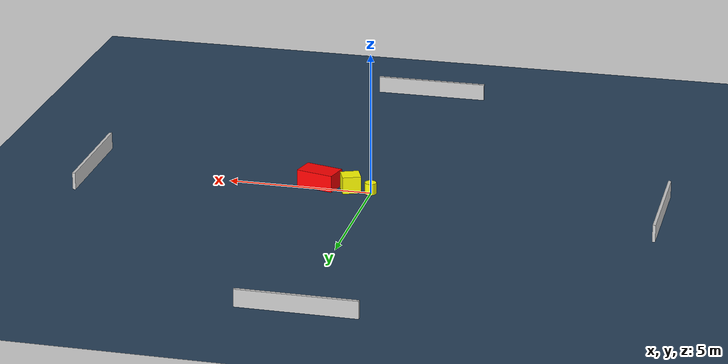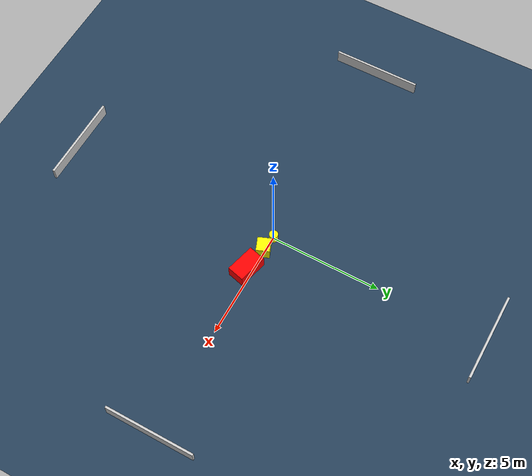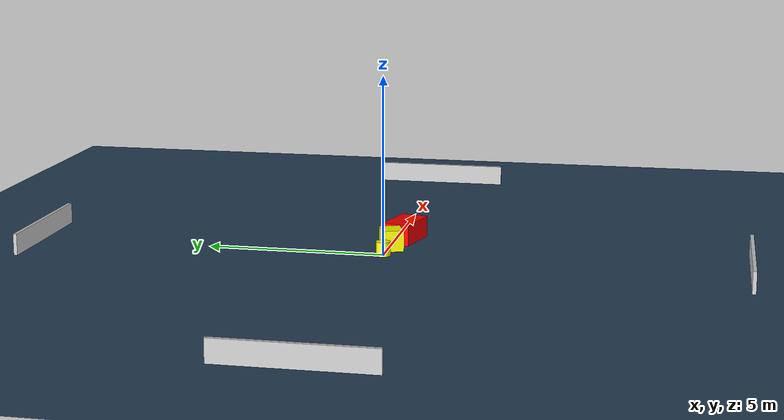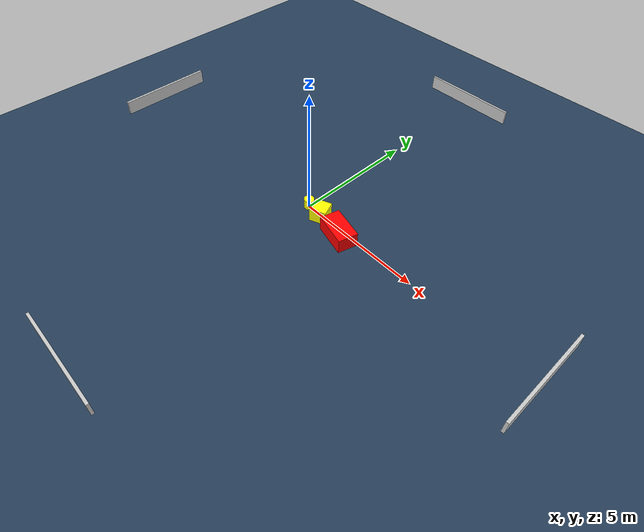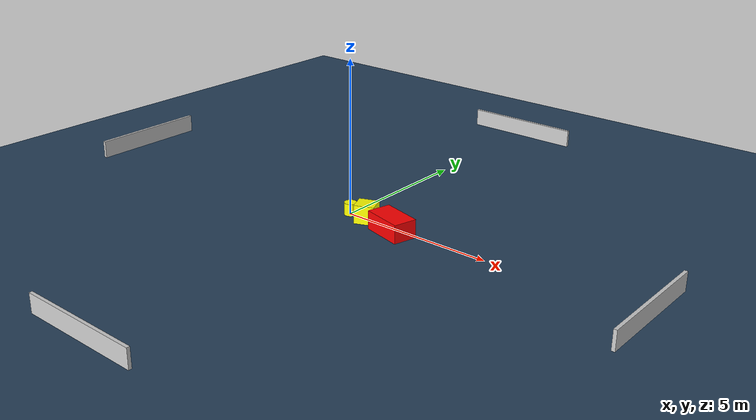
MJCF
<?xml version="1.0" ?>
<mujoco model="generated_environment">
  <option timestep="0.01" integrator="RK4" cone="elliptic"/>
  <default>
    <geom density="1"/>
  </default>
  <asset>
    <texture builtin="gradient" height="3072" name="skybox" rgb1="0.3 0.5 0.7" rgb2="0 0 0" type="skybox" width="512"/>
    <texture builtin="checker" height="300" name="groundplane" rgb1="0.2 0.3 0.4" rgb2="0.1 0.2 0.3" type="2d" width="300"/>
    <material name="groundplane" reflectance="0.2" texrepeat="5 5" texture="groundplane"/>
  </asset>
  <worldbody>
    <light dir="0 0 -1" directional="true" pos="0 0 1.5"/>
    <geom condim="3" friction="0.5 0.005 0.001" material="groundplane" name="floor" pos="0 0 0" size="0 0 0.05" type="plane"/>
    <body name="walls">
      <geom name="wall_1" condim="4" pos="-10.0 0.0 0.3" rgba="0.800000011920929 0.800000011920929 0.800000011920929 1.0" size="0.05 2.0 0.3" type="box"/>
      <geom name="wall_2" condim="4" pos="10.0 0.0 0.3" rgba="0.800000011920929 0.800000011920929 0.800000011920929 1.0" size="0.05 2.0 0.3" type="box"/>
      <geom name="wall_3" condim="4" pos="0.0 -10.0 0.3" rgba="0.800000011920929 0.800000011920929 0.800000011920929 1.0" size="2.0 0.05 0.3" type="box"/>
      <geom name="wall_4" condim="4" pos="0.0 10.0 0.3" rgba="0.800000011920929 0.800000011920929 0.800000011920929 1.0" size="2.0 0.05 0.3" type="box"/>
    </body>
    <body name="robot">
      <joint name="joint_x" type="slide" pos="0 0 0" axis="1 0 0"/>
      <joint name="joint_y" type="slide" pos="0 0 0" axis="0 1 0"/>
      <geom name="robot" type="cylinder" pos="0.0 0.0 0.2" size="0.2 0.2 0.0" mass="5.0" friction="1.0 0.005 0.0001" condim="4" rgba="1.0 1.0 0.0 1.0"/>
    </body>
    <body name="obstacle_1_movable">
      <geom name="obstacle_1_movable" condim="4" pos="0.7278621500497623 -0.08679117731341317 0.3" euler="0 0 111.88701766649565" friction="0.0 0.005 0.001" rgba="1.0 1.0 0.0 1.0" size="0.29615520294565856 0.32230826320368217 0.3" type="box" mass="0.1"/>
      <joint type="free"/>
    </body>
    <body name="obstacle_2_static">
      <geom name="obstacle_2_static" condim="4" pos="1.8733222507283933 -0.277370951744501 0.3" euler="0 0 255.65505057630378" friction="0.0 0.005 0.001" rgba="1.0 0.0 0.0 1.0" size="0.3873220769082081 0.6661907713983571 0.3" type="box"/>
    </body>
  </worldbody>
  <actuator>
    <motor name="actuator_x" joint="joint_x" gear="1" ctrlrange="-1 1"/>
    <motor name="actuator_y" joint="joint_y" gear="1" ctrlrange="-1 1"/>
  </actuator>
</mujoco>
